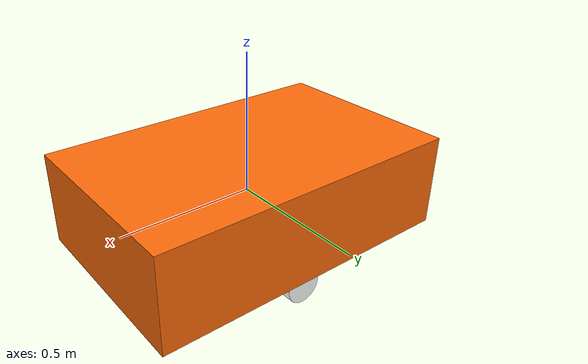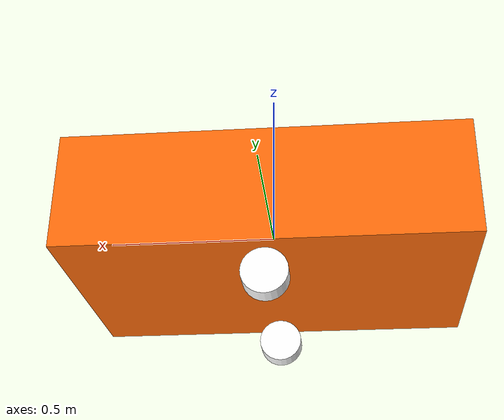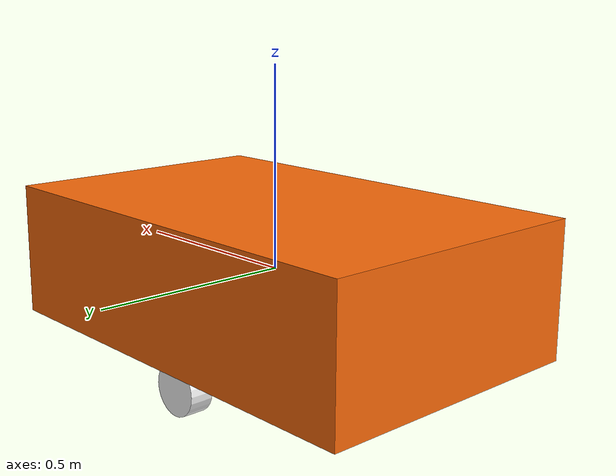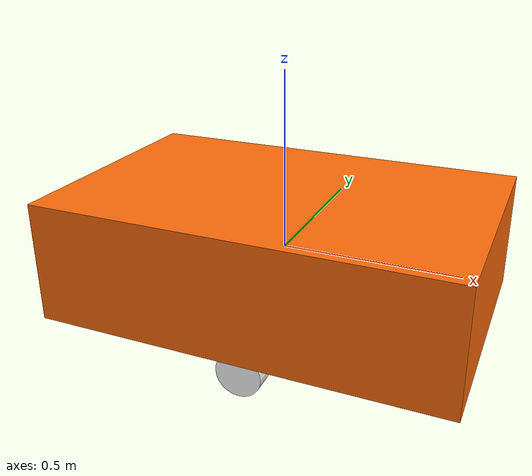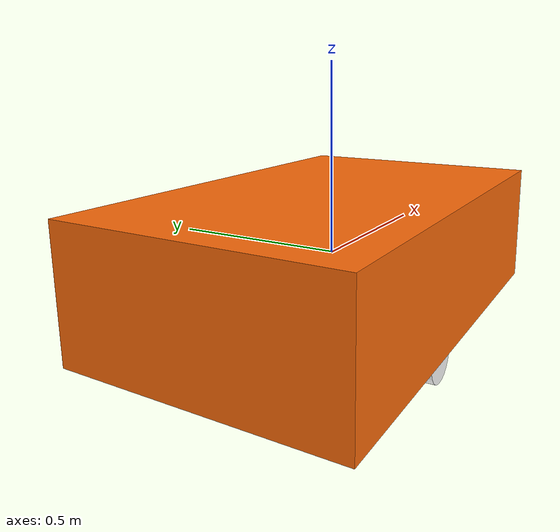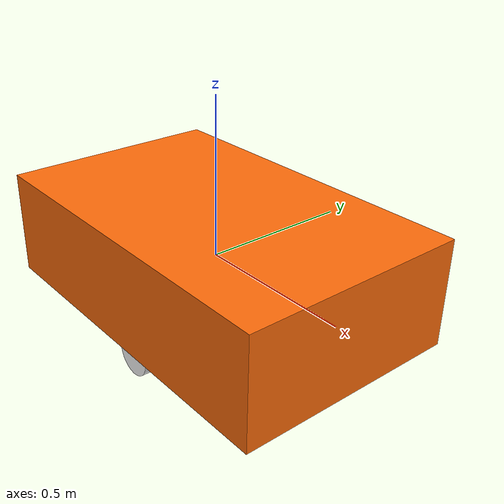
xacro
<?xml version="1.0"?>
<robot name="amr" xmlns:xacro="http://www.ros.org/wiki/xacro">
  <xacro:include filename="$(find model)/urdf/materials.xacro" />
  <xacro:include filename="$(find model)/urdf/macros.xacro" />

  <xacro:property name="PI" value="3.1415926535897931"/>

  <xacro:property name="chassisHeight" value="0.340"/>
  <xacro:property name="chassisLength" value="1.149"/>
  <xacro:property name="chassisWidth" value="0.724"/>

  <xacro:property name="odom_x" value="0.0"/>
  <xacro:property name="odom_y" value="0.0"/>
  <xacro:property name="odom_z" value="${chassisHeight/2 + wheelRadius}"/>

  <xacro:property name="odom_name" value="odom"/>

  <xacro:property name="wheelWidth" value="0.06"/>
  <xacro:property name="wheelRadius" value="0.065"/>
  <xacro:property name="wheelPos" value="0.565"/>

  <xacro:property name="LaserHeight" value="0.04"/>
  <xacro:property name="LaserRadius" value="0.038"/>
  <xacro:property name="Laser1_x" value="0.50664"/>
  <xacro:property name="Laser1_y" value="-0.29014"/>
  <xacro:property name="Laser1_z" value="0.05"/>

  <xacro:property name="Laser2_x" value="-0.50664"/>
  <xacro:property name="Laser2_y" value="0.29014"/>
  <xacro:property name="Laser2_z" value="0.05"/>

  <xacro:property name="Laser3_x" value="-0.5065"/>
  <xacro:property name="Laser3_y" value="0.18"/>
  <xacro:property name="Laser3_z" value="0.05"/>

  <link name='base_link'>
    <visual>
      <origin xyz="0 0 0" rpy="0 0 0"/>
      <geometry>
        <box size="${chassisLength} ${chassisWidth} ${chassisHeight}"/>
      </geometry>
      <material name="orange"/>
    </visual>
  </link>

  <link name="base_footprint"/>
  <joint name="base_footprint_to_base" type="fixed">
    <axis rpy="0 0 0" xyz="0 0 0"/>
    <parent link="base_footprint"/>
    <child link="base_link"/>
    <origin rpy="0 0 0" xyz="0 0 0"/>
  </joint>

  <link name="left_wheel">
    <visual>
      <origin xyz="0 0 0" rpy="0 ${PI/2} ${PI/2}" />
      <geometry>
        <cylinder length="${wheelWidth}" radius="${wheelRadius}"/>
      </geometry>
      <material name="white"/>
    </visual>
  </link>

  <joint name="left_wheel_hinge" type="continuous">
    <parent link="base_link"/>
    <child link="left_wheel"/>
    <origin xyz="0 ${wheelPos/2} ${-(chassisHeight/2+wheelRadius)}" rpy="0 0 0" />
    <axis xyz="0 1 0" rpy="0 0 0" />
  </joint>

  <link name="right_wheel">
    <visual>
      <origin xyz="0 0 0" rpy="0 ${PI/2} ${PI/2}" />
      <geometry>
        <cylinder length="${wheelWidth}" radius="${wheelRadius}"/>
      </geometry>
      <material name="white"/>
    </visual>
  </link>

  <joint name="right_wheel_hinge" type="continuous">
    <parent link="base_link"/>
    <child link="right_wheel"/>
    <origin xyz="0 ${-wheelPos/2} ${-(chassisHeight/2+wheelRadius)}" rpy="0 0 0" />
    <axis xyz="0 1 0" rpy="0 0 0" />
  </joint>

  <link name="laser">
    <visual>
      <origin xyz="0 0 0" rpy="0 0 0" />
      <geometry>
        <cylinder length="${LaserHeight}" radius="${LaserRadius}"/>
      </geometry>
      <material name="black"/>
    </visual>
  </link>

  <joint name="laser_hinge" type="continuous">
    <parent link="base_link"/>
    <child link="laser"/>
    <origin xyz="${Laser1_x} ${Laser1_y} ${Laser1_z}" rpy="${PI} 0 0" />
    <axis xyz="0 0 1" rpy="0 0 0" />
  </joint>

  <link name="laser2">
    <visual>
      <origin xyz="0 0 0" rpy="0 0 0" />
      <geometry>
        <cylinder length="${LaserHeight}" radius="${LaserRadius}"/>
      </geometry>
      <material name="black"/>
    </visual>
  </link>

  <joint name="laser2_hinge" type="continuous">
    <parent link="base_link"/>
    <child link="laser2"/>
    <origin xyz="${Laser2_x} ${Laser2_y} ${Laser2_z}" rpy="${PI} 0 3.1415926" />
    <axis xyz="0 0 1" rpy="0 0 0" />
  </joint>

  <link name="laser3">
    <visual>
      <origin xyz="0 0 0" rpy="0 0 0" />
      <geometry>
        <cylinder length="${LaserHeight}" radius="${LaserRadius}"/>
      </geometry>
      <material name="black"/>
    </visual>
  </link>

  <joint name="laser3_hinge" type="continuous">
    <parent link="base_link"/>
    <child link="laser3"/>
    <origin xyz="${Laser3_x} ${Laser3_y} ${Laser3_z}" rpy="0 0 3.1415926" />
    <axis xyz="0 0 1" rpy="0 0 0" />
  </joint>

  <link name="t265_imu"/>
  <joint name="265_imu_hinge" type="fixed">
    <parent link="base_link"/>
    <child link="t265_imu"/>
    <origin xyz="0.4965 0 -0.0125" rpy="0 0 0" />
    <axis xyz="0 0 1" rpy="0 0 0" />
  </joint>

</robot>

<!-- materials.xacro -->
<robot name="amr" xmlns:xacro="http://www.ros.org/wiki/xacro">
<material name="black">
  <color rgba="0.0 0.0 0.0 1.0"/>
</material>

<material name="blue">
  <color rgba="0.0 0.0 0.8 1.0"/>
</material>

<material name="green">
  <color rgba="0.0 0.8 0.0 1.0"/>
</material>

<material name="grey">
  <color rgba="0.2 0.2 0.2 1.0"/>
</material>

<material name="orange">
  <color rgba="${255/255} ${108/255} ${10/255} 1.0"/>
</material>

<material name="brown">
  <color rgba="${222/255} ${207/255} ${195/255} 1.0"/>
</material>

<material name="red">
  <color rgba="0.8 0.0 0.0 1.0"/>
</material>

<material name="white">
  <color rgba="1.0 1.0 1.0 1.0"/>
</material>
</robot>
